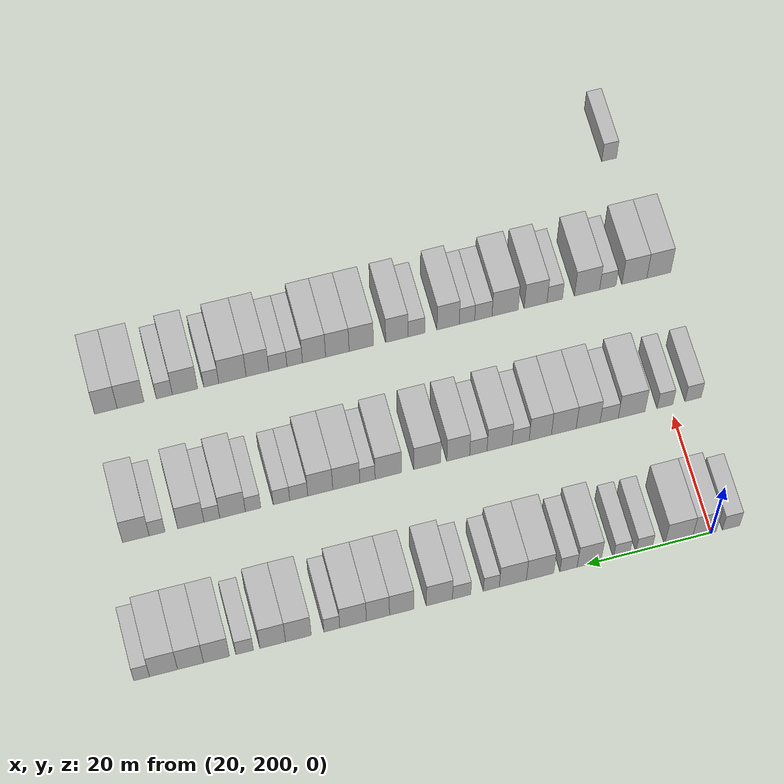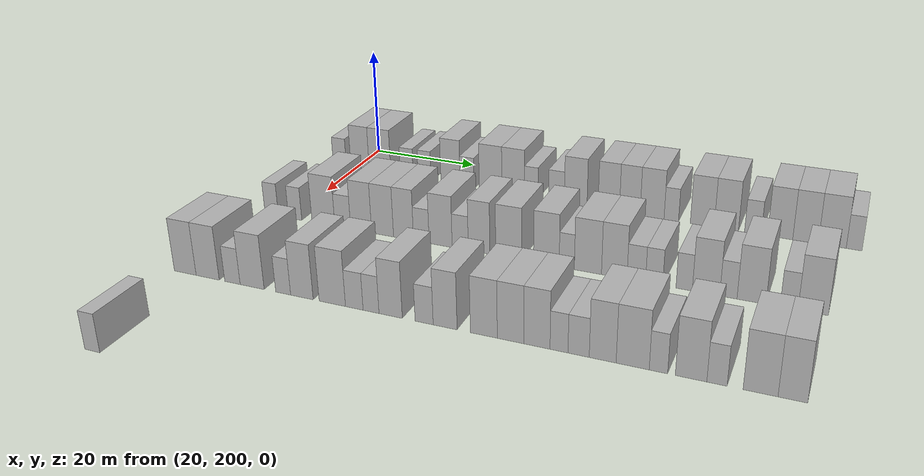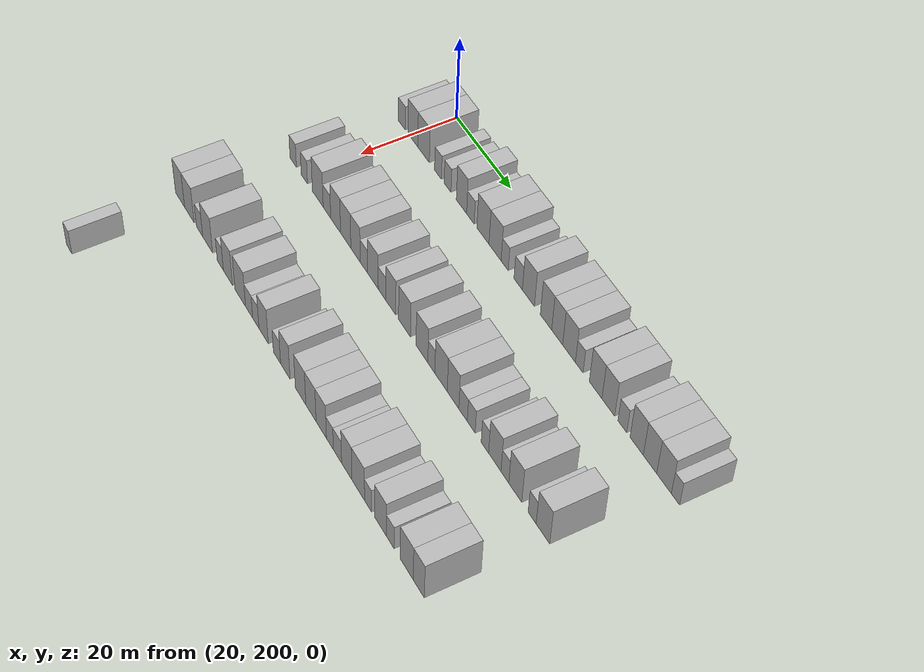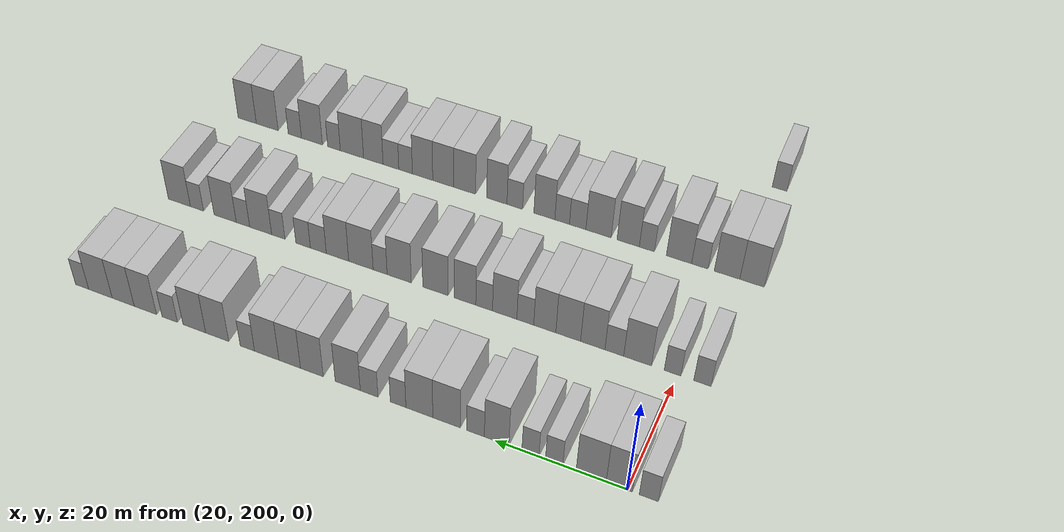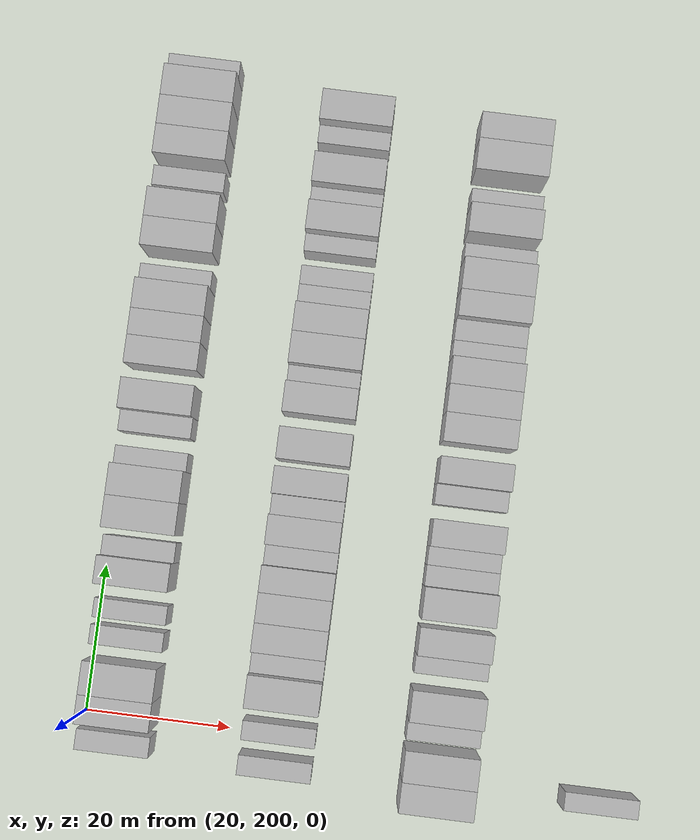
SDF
<sdf version="1.6">
 <world name="default">
  <model name="building_135">
   <static>1</static>
   <pose>25.0000 196.8871 0 0.000000 0.000000 0.000000</pose>
   <link name="link">
    <pose>0 0 3.00 0 0 0</pose>
    <collision name="collision"><geometry><box><size>10.0000 2.7892 6.0000</size></box></geometry></collision>
    <visual name="visual">
     <cast_shadows>0</cast_shadows>
     <geometry><box><size>10.0000 2.7892 6.0000</size></box></geometry>
     <material>
      <script>
       <uri>model://HANNAS_wall/materials/scripts</uri>
       <uri>model://HANNAS_wall/materials/textures</uri>
       <name>vrc/HANNAS_wall</name>
      </script>
     </material>
    </visual>
   </link>
  </model>
  <model name="building_136">
   <static>1</static>
   <pose>25.0000 201.2168 0 0.000000 0.000000 0.000000</pose>
   <link name="link">
    <pose>0 0 4.50 0 0 0</pose>
    <collision name="collision"><geometry><box><size>10.0000 3.8704 9.0000</size></box></geometry></collision>
    <visual name="visual">
     <cast_shadows>0</cast_shadows>
     <geometry><box><size>10.0000 3.8704 9.0000</size></box></geometry>
     <material>
      <script>
       <uri>model://HANNAS_wall/materials/scripts</uri>
       <uri>model://HANNAS_wall/materials/textures</uri>
       <name>vrc/HANNAS_wall</name>
      </script>
     </material>
    </visual>
   </link>
  </model>
  <model name="building_137">
   <static>1</static>
   <pose>25.0000 205.3932 0 0.000000 0.000000 0.000000</pose>
   <link name="link">
    <pose>0 0 4.50 0 0 0</pose>
    <collision name="collision"><geometry><box><size>10.0000 4.4824 9.0000</size></box></geometry></collision>
    <visual name="visual">
     <cast_shadows>0</cast_shadows>
     <geometry><box><size>10.0000 4.4824 9.0000</size></box></geometry>
     <material>
      <script>
       <uri>model://HANNAS_wall/materials/scripts</uri>
       <uri>model://HANNAS_wall/materials/textures</uri>
       <name>vrc/HANNAS_wall</name>
      </script>
     </material>
    </visual>
   </link>
  </model>
  <model name="building_138">
   <static>1</static>
   <pose>25.0000 210.9504 0 0.000000 0.000000 0.000000</pose>
   <link name="link">
    <pose>0 0 3.00 0 0 0</pose>
    <collision name="collision"><geometry><box><size>10.0000 2.6320 6.0000</size></box></geometry></collision>
    <visual name="visual">
     <cast_shadows>0</cast_shadows>
     <geometry><box><size>10.0000 2.6320 6.0000</size></box></geometry>
     <material>
      <script>
       <uri>model://HANNAS_wall/materials/scripts</uri>
       <uri>model://HANNAS_wall/materials/textures</uri>
       <name>vrc/HANNAS_wall</name>
      </script>
     </material>
    </visual>
   </link>
  </model>
  <model name="building_139">
   <static>1</static>
   <pose>25.0000 214.5678 0 0.000000 0.000000 0.000000</pose>
   <link name="link">
    <pose>0 0 3.00 0 0 0</pose>
    <collision name="collision"><geometry><box><size>10.0000 2.6027 6.0000</size></box></geometry></collision>
    <visual name="visual">
     <cast_shadows>0</cast_shadows>
     <geometry><box><size>10.0000 2.6027 6.0000</size></box></geometry>
     <material>
      <script>
       <uri>model://HANNAS_wall/materials/scripts</uri>
       <uri>model://HANNAS_wall/materials/textures</uri>
       <name>vrc/HANNAS_wall</name>
      </script>
     </material>
    </visual>
   </link>
  </model>
  <model name="building_140">
   <static>1</static>
   <pose>25.0000 219.7738 0 0.000000 0.000000 0.000000</pose>
   <link name="link">
    <pose>0 0 4.50 0 0 0</pose>
    <collision name="collision"><geometry><box><size>10.0000 3.8095 9.0000</size></box></geometry></collision>
    <visual name="visual">
     <cast_shadows>0</cast_shadows>
     <geometry><box><size>10.0000 3.8095 9.0000</size></box></geometry>
     <material>
      <script>
       <uri>model://HANNAS_wall/materials/scripts</uri>
       <uri>model://HANNAS_wall/materials/textures</uri>
       <name>vrc/HANNAS_wall</name>
      </script>
     </material>
    </visual>
   </link>
  </model>
  <model name="building_141">
   <static>1</static>
   <pose>25.0000 223.0593 0 0.000000 0.000000 0.000000</pose>
   <link name="link">
    <pose>0 0 3.00 0 0 0</pose>
    <collision name="collision"><geometry><box><size>10.0000 2.7613 6.0000</size></box></geometry></collision>
    <visual name="visual">
     <cast_shadows>0</cast_shadows>
     <geometry><box><size>10.0000 2.7613 6.0000</size></box></geometry>
     <material>
      <script>
       <uri>model://HANNAS_wall/materials/scripts</uri>
       <uri>model://HANNAS_wall/materials/textures</uri>
       <name>vrc/HANNAS_wall</name>
      </script>
     </material>
    </visual>
   </link>
  </model>
  <model name="building_142">
   <static>1</static>
   <pose>25.0000 227.6214 0 0.000000 0.000000 0.000000</pose>
   <link name="link">
    <pose>0 0 4.50 0 0 0</pose>
    <collision name="collision"><geometry><box><size>10.0000 4.3630 9.0000</size></box></geometry></collision>
    <visual name="visual">
     <cast_shadows>0</cast_shadows>
     <geometry><box><size>10.0000 4.3630 9.0000</size></box></geometry>
     <material>
      <script>
       <uri>model://HANNAS_wall/materials/scripts</uri>
       <uri>model://HANNAS_wall/materials/textures</uri>
       <name>vrc/HANNAS_wall</name>
      </script>
     </material>
    </visual>
   </link>
  </model>
  <model name="building_143">
   <static>1</static>
   <pose>25.0000 231.9650 0 0.000000 0.000000 0.000000</pose>
   <link name="link">
    <pose>0 0 4.50 0 0 0</pose>
    <collision name="collision"><geometry><box><size>10.0000 4.3241 9.0000</size></box></geometry></collision>
    <visual name="visual">
     <cast_shadows>0</cast_shadows>
     <geometry><box><size>10.0000 4.3241 9.0000</size></box></geometry>
     <material>
      <script>
       <uri>model://HANNAS_wall/materials/scripts</uri>
       <uri>model://HANNAS_wall/materials/textures</uri>
       <name>vrc/HANNAS_wall</name>
      </script>
     </material>
    </visual>
   </link>
  </model>
  <model name="building_144">
   <static>1</static>
   <pose>25.0000 235.3906 0 0.000000 0.000000 0.000000</pose>
   <link name="link">
    <pose>0 0 3.00 0 0 0</pose>
    <collision name="collision"><geometry><box><size>10.0000 2.5272 6.0000</size></box></geometry></collision>
    <visual name="visual">
     <cast_shadows>0</cast_shadows>
     <geometry><box><size>10.0000 2.5272 6.0000</size></box></geometry>
     <material>
      <script>
       <uri>model://HANNAS_wall/materials/scripts</uri>
       <uri>model://HANNAS_wall/materials/textures</uri>
       <name>vrc/HANNAS_wall</name>
      </script>
     </material>
    </visual>
   </link>
  </model>
  <model name="building_145">
   <static>1</static>
   <pose>25.0000 240.1080 0 0.000000 0.000000 0.000000</pose>
   <link name="link">
    <pose>0 0 3.00 0 0 0</pose>
    <collision name="collision"><geometry><box><size>10.0000 2.9075 6.0000</size></box></geometry></collision>
    <visual name="visual">
     <cast_shadows>0</cast_shadows>
     <geometry><box><size>10.0000 2.9075 6.0000</size></box></geometry>
     <material>
      <script>
       <uri>model://HANNAS_wall/materials/scripts</uri>
       <uri>model://HANNAS_wall/materials/textures</uri>
       <name>vrc/HANNAS_wall</name>
      </script>
     </material>
    </visual>
   </link>
  </model>
  <model name="building_146">
   <static>1</static>
   <pose>25.0000 243.6363 0 0.000000 0.000000 0.000000</pose>
   <link name="link">
    <pose>0 0 4.50 0 0 0</pose>
    <collision name="collision"><geometry><box><size>10.0000 4.1491 9.0000</size></box></geometry></collision>
    <visual name="visual">
     <cast_shadows>0</cast_shadows>
     <geometry><box><size>10.0000 4.1491 9.0000</size></box></geometry>
     <material>
      <script>
       <uri>model://HANNAS_wall/materials/scripts</uri>
       <uri>model://HANNAS_wall/materials/textures</uri>
       <name>vrc/HANNAS_wall</name>
      </script>
     </material>
    </visual>
   </link>
  </model>
  <model name="building_147">
   <static>1</static>
   <pose>25.0000 249.6225 0 0.000000 0.000000 0.000000</pose>
   <link name="link">
    <pose>0 0 4.50 0 0 0</pose>
    <collision name="collision"><geometry><box><size>10.0000 3.8234 9.0000</size></box></geometry></collision>
    <visual name="visual">
     <cast_shadows>0</cast_shadows>
     <geometry><box><size>10.0000 3.8234 9.0000</size></box></geometry>
     <material>
      <script>
       <uri>model://HANNAS_wall/materials/scripts</uri>
       <uri>model://HANNAS_wall/materials/textures</uri>
       <name>vrc/HANNAS_wall</name>
      </script>
     </material>
    </visual>
   </link>
  </model>
  <model name="building_148">
   <static>1</static>
   <pose>25.0000 253.3574 0 0.000000 0.000000 0.000000</pose>
   <link name="link">
    <pose>0 0 4.50 0 0 0</pose>
    <collision name="collision"><geometry><box><size>10.0000 3.6464 9.0000</size></box></geometry></collision>
    <visual name="visual">
     <cast_shadows>0</cast_shadows>
     <geometry><box><size>10.0000 3.6464 9.0000</size></box></geometry>
     <material>
      <script>
       <uri>model://HANNAS_wall/materials/scripts</uri>
       <uri>model://HANNAS_wall/materials/textures</uri>
       <name>vrc/HANNAS_wall</name>
      </script>
     </material>
    </visual>
   </link>
  </model>
  <model name="building_149">
   <static>1</static>
   <pose>25.0000 257.2704 0 0.000000 0.000000 0.000000</pose>
   <link name="link">
    <pose>0 0 4.50 0 0 0</pose>
    <collision name="collision"><geometry><box><size>10.0000 4.1795 9.0000</size></box></geometry></collision>
    <visual name="visual">
     <cast_shadows>0</cast_shadows>
     <geometry><box><size>10.0000 4.1795 9.0000</size></box></geometry>
     <material>
      <script>
       <uri>model://HANNAS_wall/materials/scripts</uri>
       <uri>model://HANNAS_wall/materials/textures</uri>
       <name>vrc/HANNAS_wall</name>
      </script>
     </material>
    </visual>
   </link>
  </model>
  <model name="building_150">
   <static>1</static>
   <pose>25.0000 260.6044 0 0.000000 0.000000 0.000000</pose>
   <link name="link">
    <pose>0 0 3.00 0 0 0</pose>
    <collision name="collision"><geometry><box><size>10.0000 2.4885 6.0000</size></box></geometry></collision>
    <visual name="visual">
     <cast_shadows>0</cast_shadows>
     <geometry><box><size>10.0000 2.4885 6.0000</size></box></geometry>
     <material>
      <script>
       <uri>model://HANNAS_wall/materials/scripts</uri>
       <uri>model://HANNAS_wall/materials/textures</uri>
       <name>vrc/HANNAS_wall</name>
      </script>
     </material>
    </visual>
   </link>
  </model>
  <model name="building_151">
   <static>1</static>
   <pose>25.0000 265.8659 0 0.000000 0.000000 0.000000</pose>
   <link name="link">
    <pose>0 0 4.50 0 0 0</pose>
    <collision name="collision"><geometry><box><size>10.0000 4.0345 9.0000</size></box></geometry></collision>
    <visual name="visual">
     <cast_shadows>0</cast_shadows>
     <geometry><box><size>10.0000 4.0345 9.0000</size></box></geometry>
     <material>
      <script>
       <uri>model://HANNAS_wall/materials/scripts</uri>
       <uri>model://HANNAS_wall/materials/textures</uri>
       <name>vrc/HANNAS_wall</name>
      </script>
     </material>
    </visual>
   </link>
  </model>
  <model name="building_152">
   <static>1</static>
   <pose>25.0000 269.8973 0 0.000000 0.000000 0.000000</pose>
   <link name="link">
    <pose>0 0 4.50 0 0 0</pose>
    <collision name="collision"><geometry><box><size>10.0000 4.0283 9.0000</size></box></geometry></collision>
    <visual name="visual">
     <cast_shadows>0</cast_shadows>
     <geometry><box><size>10.0000 4.0283 9.0000</size></box></geometry>
     <material>
      <script>
       <uri>model://HANNAS_wall/materials/scripts</uri>
       <uri>model://HANNAS_wall/materials/textures</uri>
       <name>vrc/HANNAS_wall</name>
      </script>
     </material>
    </visual>
   </link>
  </model>
  <model name="building_153">
   <static>1</static>
   <pose>25.0000 274.2824 0 0.000000 0.000000 0.000000</pose>
   <link name="link">
    <pose>0 0 3.00 0 0 0</pose>
    <collision name="collision"><geometry><box><size>10.0000 2.7420 6.0000</size></box></geometry></collision>
    <visual name="visual">
     <cast_shadows>0</cast_shadows>
     <geometry><box><size>10.0000 2.7420 6.0000</size></box></geometry>
     <material>
      <script>
       <uri>model://HANNAS_wall/materials/scripts</uri>
       <uri>model://HANNAS_wall/materials/textures</uri>
       <name>vrc/HANNAS_wall</name>
      </script>
     </material>
    </visual>
   </link>
  </model>
  <model name="building_154">
   <static>1</static>
   <pose>25.0000 278.6746 0 0.000000 0.000000 0.000000</pose>
   <link name="link">
    <pose>0 0 4.50 0 0 0</pose>
    <collision name="collision"><geometry><box><size>10.0000 4.0424 9.0000</size></box></geometry></collision>
    <visual name="visual">
     <cast_shadows>0</cast_shadows>
     <geometry><box><size>10.0000 4.0424 9.0000</size></box></geometry>
     <material>
      <script>
       <uri>model://HANNAS_wall/materials/scripts</uri>
       <uri>model://HANNAS_wall/materials/textures</uri>
       <name>vrc/HANNAS_wall</name>
      </script>
     </material>
    </visual>
   </link>
  </model>
  <model name="building_155">
   <static>1</static>
   <pose>25.0000 282.7156 0 0.000000 0.000000 0.000000</pose>
   <link name="link">
    <pose>0 0 4.50 0 0 0</pose>
    <collision name="collision"><geometry><box><size>10.0000 4.0396 9.0000</size></box></geometry></collision>
    <visual name="visual">
     <cast_shadows>0</cast_shadows>
     <geometry><box><size>10.0000 4.0396 9.0000</size></box></geometry>
     <material>
      <script>
       <uri>model://HANNAS_wall/materials/scripts</uri>
       <uri>model://HANNAS_wall/materials/textures</uri>
       <name>vrc/HANNAS_wall</name>
      </script>
     </material>
    </visual>
   </link>
  </model>
  <model name="building_156">
   <static>1</static>
   <pose>25.0000 286.9095 0 0.000000 0.000000 0.000000</pose>
   <link name="link">
    <pose>0 0 4.50 0 0 0</pose>
    <collision name="collision"><geometry><box><size>10.0000 4.3482 9.0000</size></box></geometry></collision>
    <visual name="visual">
     <cast_shadows>0</cast_shadows>
     <geometry><box><size>10.0000 4.3482 9.0000</size></box></geometry>
     <material>
      <script>
       <uri>model://HANNAS_wall/materials/scripts</uri>
       <uri>model://HANNAS_wall/materials/textures</uri>
       <name>vrc/HANNAS_wall</name>
      </script>
     </material>
    </visual>
   </link>
  </model>
  <model name="building_157">
   <static>1</static>
   <pose>25.0000 290.3021 0 0.000000 0.000000 0.000000</pose>
   <link name="link">
    <pose>0 0 3.00 0 0 0</pose>
    <collision name="collision"><geometry><box><size>10.0000 2.4369 6.0000</size></box></geometry></collision>
    <visual name="visual">
     <cast_shadows>0</cast_shadows>
     <geometry><box><size>10.0000 2.4369 6.0000</size></box></geometry>
     <material>
      <script>
       <uri>model://HANNAS_wall/materials/scripts</uri>
       <uri>model://HANNAS_wall/materials/textures</uri>
       <name>vrc/HANNAS_wall</name>
      </script>
     </material>
    </visual>
   </link>
  </model>
  <model name="building_329">
   <static>1</static>
   <pose>47.0000 196.1818 0 0.000000 0.000000 0.000000</pose>
   <link name="link">
    <pose>0 0 3.00 0 0 0</pose>
    <collision name="collision"><geometry><box><size>10.0000 2.6689 6.0000</size></box></geometry></collision>
    <visual name="visual">
     <cast_shadows>0</cast_shadows>
     <geometry><box><size>10.0000 2.6689 6.0000</size></box></geometry>
     <material>
      <script>
       <uri>model://HANNAS_wall/materials/scripts</uri>
       <uri>model://HANNAS_wall/materials/textures</uri>
       <name>vrc/HANNAS_wall</name>
      </script>
     </material>
    </visual>
   </link>
  </model>
  <model name="building_330">
   <static>1</static>
   <pose>47.0000 200.8099 0 0.000000 0.000000 0.000000</pose>
   <link name="link">
    <pose>0 0 3.00 0 0 0</pose>
    <collision name="collision"><geometry><box><size>10.0000 2.5873 6.0000</size></box></geometry></collision>
    <visual name="visual">
     <cast_shadows>0</cast_shadows>
     <geometry><box><size>10.0000 2.5873 6.0000</size></box></geometry>
     <material>
      <script>
       <uri>model://HANNAS_wall/materials/scripts</uri>
       <uri>model://HANNAS_wall/materials/textures</uri>
       <name>vrc/HANNAS_wall</name>
      </script>
     </material>
    </visual>
   </link>
  </model>
  <model name="building_331">
   <static>1</static>
   <pose>47.0000 206.2992 0 0.000000 0.000000 0.000000</pose>
   <link name="link">
    <pose>0 0 4.50 0 0 0</pose>
    <collision name="collision"><geometry><box><size>10.0000 4.3912 9.0000</size></box></geometry></collision>
    <visual name="visual">
     <cast_shadows>0</cast_shadows>
     <geometry><box><size>10.0000 4.3912 9.0000</size></box></geometry>
     <material>
      <script>
       <uri>model://HANNAS_wall/materials/scripts</uri>
       <uri>model://HANNAS_wall/materials/textures</uri>
       <name>vrc/HANNAS_wall</name>
      </script>
     </material>
    </visual>
   </link>
  </model>
  <model name="building_332">
   <static>1</static>
   <pose>47.0000 209.9893 0 0.000000 0.000000 0.000000</pose>
   <link name="link">
    <pose>0 0 3.00 0 0 0</pose>
    <collision name="collision"><geometry><box><size>10.0000 2.9890 6.0000</size></box></geometry></collision>
    <visual name="visual">
     <cast_shadows>0</cast_shadows>
     <geometry><box><size>10.0000 2.9890 6.0000</size></box></geometry>
     <material>
      <script>
       <uri>model://HANNAS_wall/materials/scripts</uri>
       <uri>model://HANNAS_wall/materials/textures</uri>
       <name>vrc/HANNAS_wall</name>
      </script>
     </material>
    </visual>
   </link>
  </model>
  <model name="building_333">
   <static>1</static>
   <pose>47.0000 213.4404 0 0.000000 0.000000 0.000000</pose>
   <link name="link">
    <pose>0 0 4.50 0 0 0</pose>
    <collision name="collision"><geometry><box><size>10.0000 3.9133 9.0000</size></box></geometry></collision>
    <visual name="visual">
     <cast_shadows>0</cast_shadows>
     <geometry><box><size>10.0000 3.9133 9.0000</size></box></geometry>
     <material>
      <script>
       <uri>model://HANNAS_wall/materials/scripts</uri>
       <uri>model://HANNAS_wall/materials/textures</uri>
       <name>vrc/HANNAS_wall</name>
      </script>
     </material>
    </visual>
   </link>
  </model>
  <model name="building_334">
   <static>1</static>
   <pose>47.0000 217.4116 0 0.000000 0.000000 0.000000</pose>
   <link name="link">
    <pose>0 0 4.50 0 0 0</pose>
    <collision name="collision"><geometry><box><size>10.0000 4.0290 9.0000</size></box></geometry></collision>
    <visual name="visual">
     <cast_shadows>0</cast_shadows>
     <geometry><box><size>10.0000 4.0290 9.0000</size></box></geometry>
     <material>
      <script>
       <uri>model://HANNAS_wall/materials/scripts</uri>
       <uri>model://HANNAS_wall/materials/textures</uri>
       <name>vrc/HANNAS_wall</name>
      </script>
     </material>
    </visual>
   </link>
  </model>
  <model name="building_335">
   <static>1</static>
   <pose>47.0000 221.2414 0 0.000000 0.000000 0.000000</pose>
   <link name="link">
    <pose>0 0 4.50 0 0 0</pose>
    <collision name="collision"><geometry><box><size>10.0000 3.6306 9.0000</size></box></geometry></collision>
    <visual name="visual">
     <cast_shadows>0</cast_shadows>
     <geometry><box><size>10.0000 3.6306 9.0000</size></box></geometry>
     <material>
      <script>
       <uri>model://HANNAS_wall/materials/scripts</uri>
       <uri>model://HANNAS_wall/materials/textures</uri>
       <name>vrc/HANNAS_wall</name>
      </script>
     </material>
    </visual>
   </link>
  </model>
  <model name="building_336">
   <static>1</static>
   <pose>47.0000 224.4515 0 0.000000 0.000000 0.000000</pose>
   <link name="link">
    <pose>0 0 3.00 0 0 0</pose>
    <collision name="collision"><geometry><box><size>10.0000 2.7896 6.0000</size></box></geometry></collision>
    <visual name="visual">
     <cast_shadows>0</cast_shadows>
     <geometry><box><size>10.0000 2.7896 6.0000</size></box></geometry>
     <material>
      <script>
       <uri>model://HANNAS_wall/materials/scripts</uri>
       <uri>model://HANNAS_wall/materials/textures</uri>
       <name>vrc/HANNAS_wall</name>
      </script>
     </material>
    </visual>
   </link>
  </model>
  <model name="building_337">
   <static>1</static>
   <pose>47.0000 227.8812 0 0.000000 0.000000 0.000000</pose>
   <link name="link">
    <pose>0 0 4.50 0 0 0</pose>
    <collision name="collision"><geometry><box><size>10.0000 4.0697 9.0000</size></box></geometry></collision>
    <visual name="visual">
     <cast_shadows>0</cast_shadows>
     <geometry><box><size>10.0000 4.0697 9.0000</size></box></geometry>
     <material>
      <script>
       <uri>model://HANNAS_wall/materials/scripts</uri>
       <uri>model://HANNAS_wall/materials/textures</uri>
       <name>vrc/HANNAS_wall</name>
      </script>
     </material>
    </visual>
   </link>
  </model>
  <model name="building_338">
   <static>1</static>
   <pose>47.0000 231.3201 0 0.000000 0.000000 0.000000</pose>
   <link name="link">
    <pose>0 0 3.00 0 0 0</pose>
    <collision name="collision"><geometry><box><size>10.0000 2.8081 6.0000</size></box></geometry></collision>
    <visual name="visual">
     <cast_shadows>0</cast_shadows>
     <geometry><box><size>10.0000 2.8081 6.0000</size></box></geometry>
     <material>
      <script>
       <uri>model://HANNAS_wall/materials/scripts</uri>
       <uri>model://HANNAS_wall/materials/textures</uri>
       <name>vrc/HANNAS_wall</name>
      </script>
     </material>
    </visual>
   </link>
  </model>
  <model name="building_339">
   <static>1</static>
   <pose>47.0000 234.5798 0 0.000000 0.000000 0.000000</pose>
   <link name="link">
    <pose>0 0 4.50 0 0 0</pose>
    <collision name="collision"><geometry><box><size>10.0000 3.7114 9.0000</size></box></geometry></collision>
    <visual name="visual">
     <cast_shadows>0</cast_shadows>
     <geometry><box><size>10.0000 3.7114 9.0000</size></box></geometry>
     <material>
      <script>
       <uri>model://HANNAS_wall/materials/scripts</uri>
       <uri>model://HANNAS_wall/materials/textures</uri>
       <name>vrc/HANNAS_wall</name>
      </script>
     </material>
    </visual>
   </link>
  </model>
  <model name="building_340">
   <static>1</static>
   <pose>47.0000 239.6092 0 0.000000 0.000000 0.000000</pose>
   <link name="link">
    <pose>0 0 4.50 0 0 0</pose>
    <collision name="collision"><geometry><box><size>10.0000 4.3473 9.0000</size></box></geometry></collision>
    <visual name="visual">
     <cast_shadows>0</cast_shadows>
     <geometry><box><size>10.0000 4.3473 9.0000</size></box></geometry>
     <material>
      <script>
       <uri>model://HANNAS_wall/materials/scripts</uri>
       <uri>model://HANNAS_wall/materials/textures</uri>
       <name>vrc/HANNAS_wall</name>
      </script>
     </material>
    </visual>
   </link>
  </model>
  <model name="building_341">
   <static>1</static>
   <pose>47.0000 245.8925 0 0.000000 0.000000 0.000000</pose>
   <link name="link">
    <pose>0 0 4.50 0 0 0</pose>
    <collision name="collision"><geometry><box><size>10.0000 4.2194 9.0000</size></box></geometry></collision>
    <visual name="visual">
     <cast_shadows>0</cast_shadows>
     <geometry><box><size>10.0000 4.2194 9.0000</size></box></geometry>
     <material>
      <script>
       <uri>model://HANNAS_wall/materials/scripts</uri>
       <uri>model://HANNAS_wall/materials/textures</uri>
       <name>vrc/HANNAS_wall</name>
      </script>
     </material>
    </visual>
   </link>
  </model>
  <model name="building_342">
   <static>1</static>
   <pose>47.0000 249.2314 0 0.000000 0.000000 0.000000</pose>
   <link name="link">
    <pose>0 0 3.00 0 0 0</pose>
    <collision name="collision"><geometry><box><size>10.0000 2.4585 6.0000</size></box></geometry></collision>
    <visual name="visual">
     <cast_shadows>0</cast_shadows>
     <geometry><box><size>10.0000 2.4585 6.0000</size></box></geometry>
     <material>
      <script>
       <uri>model://HANNAS_wall/materials/scripts</uri>
       <uri>model://HANNAS_wall/materials/textures</uri>
       <name>vrc/HANNAS_wall</name>
      </script>
     </material>
    </visual>
   </link>
  </model>
  <model name="building_343">
   <static>1</static>
   <pose>47.0000 252.6317 0 0.000000 0.000000 0.000000</pose>
   <link name="link">
    <pose>0 0 4.50 0 0 0</pose>
    <collision name="collision"><geometry><box><size>10.0000 4.3420 9.0000</size></box></geometry></collision>
    <visual name="visual">
     <cast_shadows>0</cast_shadows>
     <geometry><box><size>10.0000 4.3420 9.0000</size></box></geometry>
     <material>
      <script>
       <uri>model://HANNAS_wall/materials/scripts</uri>
       <uri>model://HANNAS_wall/materials/textures</uri>
       <name>vrc/HANNAS_wall</name>
      </script>
     </material>
    </visual>
   </link>
  </model>
  <model name="building_344">
   <static>1</static>
   <pose>47.0000 256.8088 0 0.000000 0.000000 0.000000</pose>
   <link name="link">
    <pose>0 0 4.50 0 0 0</pose>
    <collision name="collision"><geometry><box><size>10.0000 4.0122 9.0000</size></box></geometry></collision>
    <visual name="visual">
     <cast_shadows>0</cast_shadows>
     <geometry><box><size>10.0000 4.0122 9.0000</size></box></geometry>
     <material>
      <script>
       <uri>model://HANNAS_wall/materials/scripts</uri>
       <uri>model://HANNAS_wall/materials/textures</uri>
       <name>vrc/HANNAS_wall</name>
      </script>
     </material>
    </visual>
   </link>
  </model>
  <model name="building_345">
   <static>1</static>
   <pose>47.0000 260.2570 0 0.000000 0.000000 0.000000</pose>
   <link name="link">
    <pose>0 0 3.00 0 0 0</pose>
    <collision name="collision"><geometry><box><size>10.0000 2.8843 6.0000</size></box></geometry></collision>
    <visual name="visual">
     <cast_shadows>0</cast_shadows>
     <geometry><box><size>10.0000 2.8843 6.0000</size></box></geometry>
     <material>
      <script>
       <uri>model://HANNAS_wall/materials/scripts</uri>
       <uri>model://HANNAS_wall/materials/textures</uri>
       <name>vrc/HANNAS_wall</name>
      </script>
     </material>
    </visual>
   </link>
  </model>
  <model name="building_346">
   <static>1</static>
   <pose>47.0000 263.0174 0 0.000000 0.000000 0.000000</pose>
   <link name="link">
    <pose>0 0 3.00 0 0 0</pose>
    <collision name="collision"><geometry><box><size>10.0000 2.6363 6.0000</size></box></geometry></collision>
    <visual name="visual">
     <cast_shadows>0</cast_shadows>
     <geometry><box><size>10.0000 2.6363 6.0000</size></box></geometry>
     <material>
      <script>
       <uri>model://HANNAS_wall/materials/scripts</uri>
       <uri>model://HANNAS_wall/materials/textures</uri>
       <name>vrc/HANNAS_wall</name>
      </script>
     </material>
    </visual>
   </link>
  </model>
  <model name="building_347">
   <static>1</static>
   <pose>47.0000 267.5622 0 0.000000 0.000000 0.000000</pose>
   <link name="link">
    <pose>0 0 3.00 0 0 0</pose>
    <collision name="collision"><geometry><box><size>10.0000 2.4535 6.0000</size></box></geometry></collision>
    <visual name="visual">
     <cast_shadows>0</cast_shadows>
     <geometry><box><size>10.0000 2.4535 6.0000</size></box></geometry>
     <material>
      <script>
       <uri>model://HANNAS_wall/materials/scripts</uri>
       <uri>model://HANNAS_wall/materials/textures</uri>
       <name>vrc/HANNAS_wall</name>
      </script>
     </material>
    </visual>
   </link>
  </model>
  <model name="building_348">
   <static>1</static>
   <pose>47.0000 270.8251 0 0.000000 0.000000 0.000000</pose>
   <link name="link">
    <pose>0 0 4.50 0 0 0</pose>
    <collision name="collision"><geometry><box><size>10.0000 4.0722 9.0000</size></box></geometry></collision>
    <visual name="visual">
     <cast_shadows>0</cast_shadows>
     <geometry><box><size>10.0000 4.0722 9.0000</size></box></geometry>
     <material>
      <script>
       <uri>model://HANNAS_wall/materials/scripts</uri>
       <uri>model://HANNAS_wall/materials/textures</uri>
       <name>vrc/HANNAS_wall</name>
      </script>
     </material>
    </visual>
   </link>
  </model>
  <model name="building_349">
   <static>1</static>
   <pose>47.0000 274.1231 0 0.000000 0.000000 0.000000</pose>
   <link name="link">
    <pose>0 0 3.00 0 0 0</pose>
    <collision name="collision"><geometry><box><size>10.0000 2.5238 6.0000</size></box></geometry></collision>
    <visual name="visual">
     <cast_shadows>0</cast_shadows>
     <geometry><box><size>10.0000 2.5238 6.0000</size></box></geometry>
     <material>
      <script>
       <uri>model://HANNAS_wall/materials/scripts</uri>
       <uri>model://HANNAS_wall/materials/textures</uri>
       <name>vrc/HANNAS_wall</name>
      </script>
     </material>
    </visual>
   </link>
  </model>
  <model name="building_350">
   <static>1</static>
   <pose>47.0000 277.4728 0 0.000000 0.000000 0.000000</pose>
   <link name="link">
    <pose>0 0 4.50 0 0 0</pose>
    <collision name="collision"><geometry><box><size>10.0000 4.1755 9.0000</size></box></geometry></collision>
    <visual name="visual">
     <cast_shadows>0</cast_shadows>
     <geometry><box><size>10.0000 4.1755 9.0000</size></box></geometry>
     <material>
      <script>
       <uri>model://HANNAS_wall/materials/scripts</uri>
       <uri>model://HANNAS_wall/materials/textures</uri>
       <name>vrc/HANNAS_wall</name>
      </script>
     </material>
    </visual>
   </link>
  </model>
  <model name="building_351">
   <static>1</static>
   <pose>47.0000 282.8195 0 0.000000 0.000000 0.000000</pose>
   <link name="link">
    <pose>0 0 3.00 0 0 0</pose>
    <collision name="collision"><geometry><box><size>10.0000 2.5179 6.0000</size></box></geometry></collision>
    <visual name="visual">
     <cast_shadows>0</cast_shadows>
     <geometry><box><size>10.0000 2.5179 6.0000</size></box></geometry>
     <material>
      <script>
       <uri>model://HANNAS_wall/materials/scripts</uri>
       <uri>model://HANNAS_wall/materials/textures</uri>
       <name>vrc/HANNAS_wall</name>
      </script>
     </material>
    </visual>
   </link>
  </model>
  <model name="building_352">
   <static>1</static>
   <pose>47.0000 286.1905 0 0.000000 0.000000 0.000000</pose>
   <link name="link">
    <pose>0 0 4.50 0 0 0</pose>
    <collision name="collision"><geometry><box><size>10.0000 4.2240 9.0000</size></box></geometry></collision>
    <visual name="visual">
     <cast_shadows>0</cast_shadows>
     <geometry><box><size>10.0000 4.2240 9.0000</size></box></geometry>
     <material>
      <script>
       <uri>model://HANNAS_wall/materials/scripts</uri>
       <uri>model://HANNAS_wall/materials/textures</uri>
       <name>vrc/HANNAS_wall</name>
      </script>
     </material>
    </visual>
   </link>
  </model>
  <model name="building_519">
   <static>1</static>
   <pose>69.0000 195.0951 0 0.000000 0.000000 0.000000</pose>
   <link name="link">
    <pose>0 0 4.50 0 0 0</pose>
    <collision name="collision"><geometry><box><size>10.0000 4.0037 9.0000</size></box></geometry></collision>
    <visual name="visual">
     <cast_shadows>0</cast_shadows>
     <geometry><box><size>10.0000 4.0037 9.0000</size></box></geometry>
     <material>
      <script>
       <uri>model://HANNAS_wall/materials/scripts</uri>
       <uri>model://HANNAS_wall/materials/textures</uri>
       <name>vrc/HANNAS_wall</name>
      </script>
     </material>
    </visual>
   </link>
  </model>
  <model name="building_520">
   <static>1</static>
   <pose>69.0000 199.1858 0 0.000000 0.000000 0.000000</pose>
   <link name="link">
    <pose>0 0 4.50 0 0 0</pose>
    <collision name="collision"><geometry><box><size>10.0000 4.1778 9.0000</size></box></geometry></collision>
    <visual name="visual">
     <cast_shadows>0</cast_shadows>
     <geometry><box><size>10.0000 4.1778 9.0000</size></box></geometry>
     <material>
      <script>
       <uri>model://HANNAS_wall/materials/scripts</uri>
       <uri>model://HANNAS_wall/materials/textures</uri>
       <name>vrc/HANNAS_wall</name>
      </script>
     </material>
    </visual>
   </link>
  </model>
  <model name="building_521">
   <static>1</static>
   <pose>69.0000 203.6396 0 0.000000 0.000000 0.000000</pose>
   <link name="link">
    <pose>0 0 3.00 0 0 0</pose>
    <collision name="collision"><geometry><box><size>10.0000 2.7298 6.0000</size></box></geometry></collision>
    <visual name="visual">
     <cast_shadows>0</cast_shadows>
     <geometry><box><size>10.0000 2.7298 6.0000</size></box></geometry>
     <material>
      <script>
       <uri>model://HANNAS_wall/materials/scripts</uri>
       <uri>model://HANNAS_wall/materials/textures</uri>
       <name>vrc/HANNAS_wall</name>
      </script>
     </material>
    </visual>
   </link>
  </model>
  <model name="building_522">
   <static>1</static>
   <pose>69.0000 207.1074 0 0.000000 0.000000 0.000000</pose>
   <link name="link">
    <pose>0 0 4.50 0 0 0</pose>
    <collision name="collision"><geometry><box><size>10.0000 4.2057 9.0000</size></box></geometry></collision>
    <visual name="visual">
     <cast_shadows>0</cast_shadows>
     <geometry><box><size>10.0000 4.2057 9.0000</size></box></geometry>
     <material>
      <script>
       <uri>model://HANNAS_wall/materials/scripts</uri>
       <uri>model://HANNAS_wall/materials/textures</uri>
       <name>vrc/HANNAS_wall</name>
      </script>
     </material>
    </visual>
   </link>
  </model>
  <model name="building_523">
   <static>1</static>
   <pose>69.0000 212.4880 0 0.000000 0.000000 0.000000</pose>
   <link name="link">
    <pose>0 0 3.00 0 0 0</pose>
    <collision name="collision"><geometry><box><size>10.0000 2.5556 6.0000</size></box></geometry></collision>
    <visual name="visual">
     <cast_shadows>0</cast_shadows>
     <geometry><box><size>10.0000 2.5556 6.0000</size></box></geometry>
     <material>
      <script>
       <uri>model://HANNAS_wall/materials/scripts</uri>
       <uri>model://HANNAS_wall/materials/textures</uri>
       <name>vrc/HANNAS_wall</name>
      </script>
     </material>
    </visual>
   </link>
  </model>
  <model name="building_524">
   <static>1</static>
   <pose>69.0000 215.6673 0 0.000000 0.000000 0.000000</pose>
   <link name="link">
    <pose>0 0 4.50 0 0 0</pose>
    <collision name="collision"><geometry><box><size>10.0000 3.8029 9.0000</size></box></geometry></collision>
    <visual name="visual">
     <cast_shadows>0</cast_shadows>
     <geometry><box><size>10.0000 3.8029 9.0000</size></box></geometry>
     <material>
      <script>
       <uri>model://HANNAS_wall/materials/scripts</uri>
       <uri>model://HANNAS_wall/materials/textures</uri>
       <name>vrc/HANNAS_wall</name>
      </script>
     </material>
    </visual>
   </link>
  </model>
  <model name="building_525">
   <static>1</static>
   <pose>69.0000 220.7444 0 0.000000 0.000000 0.000000</pose>
   <link name="link">
    <pose>0 0 4.50 0 0 0</pose>
    <collision name="collision"><geometry><box><size>10.0000 4.3514 9.0000</size></box></geometry></collision>
    <visual name="visual">
     <cast_shadows>0</cast_shadows>
     <geometry><box><size>10.0000 4.3514 9.0000</size></box></geometry>
     <material>
      <script>
       <uri>model://HANNAS_wall/materials/scripts</uri>
       <uri>model://HANNAS_wall/materials/textures</uri>
       <name>vrc/HANNAS_wall</name>
      </script>
     </material>
    </visual>
   </link>
  </model>
  <model name="building_526">
   <static>1</static>
   <pose>69.0000 224.3507 0 0.000000 0.000000 0.000000</pose>
   <link name="link">
    <pose>0 0 3.00 0 0 0</pose>
    <collision name="collision"><geometry><box><size>10.0000 2.8611 6.0000</size></box></geometry></collision>
    <visual name="visual">
     <cast_shadows>0</cast_shadows>
     <geometry><box><size>10.0000 2.8611 6.0000</size></box></geometry>
     <material>
      <script>
       <uri>model://HANNAS_wall/materials/scripts</uri>
       <uri>model://HANNAS_wall/materials/textures</uri>
       <name>vrc/HANNAS_wall</name>
      </script>
     </material>
    </visual>
   </link>
  </model>
  <model name="building_527">
   <static>1</static>
   <pose>69.0000 227.0581 0 0.000000 0.000000 0.000000</pose>
   <link name="link">
    <pose>0 0 3.00 0 0 0</pose>
    <collision name="collision"><geometry><box><size>10.0000 2.5537 6.0000</size></box></geometry></collision>
    <visual name="visual">
     <cast_shadows>0</cast_shadows>
     <geometry><box><size>10.0000 2.5537 6.0000</size></box></geometry>
     <material>
      <script>
       <uri>model://HANNAS_wall/materials/scripts</uri>
       <uri>model://HANNAS_wall/materials/textures</uri>
       <name>vrc/HANNAS_wall</name>
      </script>
     </material>
    </visual>
   </link>
  </model>
  <model name="building_528">
   <static>1</static>
   <pose>69.0000 230.1826 0 0.000000 0.000000 0.000000</pose>
   <link name="link">
    <pose>0 0 4.50 0 0 0</pose>
    <collision name="collision"><geometry><box><size>10.0000 3.6953 9.0000</size></box></geometry></collision>
    <visual name="visual">
     <cast_shadows>0</cast_shadows>
     <geometry><box><size>10.0000 3.6953 9.0000</size></box></geometry>
     <material>
      <script>
       <uri>model://HANNAS_wall/materials/scripts</uri>
       <uri>model://HANNAS_wall/materials/textures</uri>
       <name>vrc/HANNAS_wall</name>
      </script>
     </material>
    </visual>
   </link>
  </model>
  <model name="building_529">
   <static>1</static>
   <pose>69.0000 235.4285 0 0.000000 0.000000 0.000000</pose>
   <link name="link">
    <pose>0 0 3.00 0 0 0</pose>
    <collision name="collision"><geometry><box><size>10.0000 2.7965 6.0000</size></box></geometry></collision>
    <visual name="visual">
     <cast_shadows>0</cast_shadows>
     <geometry><box><size>10.0000 2.7965 6.0000</size></box></geometry>
     <material>
      <script>
       <uri>model://HANNAS_wall/materials/scripts</uri>
       <uri>model://HANNAS_wall/materials/textures</uri>
       <name>vrc/HANNAS_wall</name>
      </script>
     </material>
    </visual>
   </link>
  </model>
  <model name="building_530">
   <static>1</static>
   <pose>69.0000 238.6536 0 0.000000 0.000000 0.000000</pose>
   <link name="link">
    <pose>0 0 4.50 0 0 0</pose>
    <collision name="collision"><geometry><box><size>10.0000 3.6537 9.0000</size></box></geometry></collision>
    <visual name="visual">
     <cast_shadows>0</cast_shadows>
     <geometry><box><size>10.0000 3.6537 9.0000</size></box></geometry>
     <material>
      <script>
       <uri>model://HANNAS_wall/materials/scripts</uri>
       <uri>model://HANNAS_wall/materials/textures</uri>
       <name>vrc/HANNAS_wall</name>
      </script>
     </material>
    </visual>
   </link>
  </model>
  <model name="building_531">
   <static>1</static>
   <pose>69.0000 244.4758 0 0.000000 0.000000 0.000000</pose>
   <link name="link">
    <pose>0 0 4.50 0 0 0</pose>
    <collision name="collision"><geometry><box><size>10.0000 3.9907 9.0000</size></box></geometry></collision>
    <visual name="visual">
     <cast_shadows>0</cast_shadows>
     <geometry><box><size>10.0000 3.9907 9.0000</size></box></geometry>
     <material>
      <script>
       <uri>model://HANNAS_wall/materials/scripts</uri>
       <uri>model://HANNAS_wall/materials/textures</uri>
       <name>vrc/HANNAS_wall</name>
      </script>
     </material>
    </visual>
   </link>
  </model>
  <model name="building_532">
   <static>1</static>
   <pose>69.0000 248.3947 0 0.000000 0.000000 0.000000</pose>
   <link name="link">
    <pose>0 0 4.50 0 0 0</pose>
    <collision name="collision"><geometry><box><size>10.0000 3.8472 9.0000</size></box></geometry></collision>
    <visual name="visual">
     <cast_shadows>0</cast_shadows>
     <geometry><box><size>10.0000 3.8472 9.0000</size></box></geometry>
     <material>
      <script>
       <uri>model://HANNAS_wall/materials/scripts</uri>
       <uri>model://HANNAS_wall/materials/textures</uri>
       <name>vrc/HANNAS_wall</name>
      </script>
     </material>
    </visual>
   </link>
  </model>
  <model name="building_533">
   <static>1</static>
   <pose>69.0000 252.2097 0 0.000000 0.000000 0.000000</pose>
   <link name="link">
    <pose>0 0 4.50 0 0 0</pose>
    <collision name="collision"><geometry><box><size>10.0000 3.7828 9.0000</size></box></geometry></collision>
    <visual name="visual">
     <cast_shadows>0</cast_shadows>
     <geometry><box><size>10.0000 3.7828 9.0000</size></box></geometry>
     <material>
      <script>
       <uri>model://HANNAS_wall/materials/scripts</uri>
       <uri>model://HANNAS_wall/materials/textures</uri>
       <name>vrc/HANNAS_wall</name>
      </script>
     </material>
    </visual>
   </link>
  </model>
  <model name="building_534">
   <static>1</static>
   <pose>69.0000 255.3673 0 0.000000 0.000000 0.000000</pose>
   <link name="link">
    <pose>0 0 3.00 0 0 0</pose>
    <collision name="collision"><geometry><box><size>10.0000 2.5324 6.0000</size></box></geometry></collision>
    <visual name="visual">
     <cast_shadows>0</cast_shadows>
     <geometry><box><size>10.0000 2.5324 6.0000</size></box></geometry>
     <material>
      <script>
       <uri>model://HANNAS_wall/materials/scripts</uri>
       <uri>model://HANNAS_wall/materials/textures</uri>
       <name>vrc/HANNAS_wall</name>
      </script>
     </material>
    </visual>
   </link>
  </model>
  <model name="building_535">
   <static>1</static>
   <pose>69.0000 258.1132 0 0.000000 0.000000 0.000000</pose>
   <link name="link">
    <pose>0 0 3.00 0 0 0</pose>
    <collision name="collision"><geometry><box><size>10.0000 2.9595 6.0000</size></box></geometry></collision>
    <visual name="visual">
     <cast_shadows>0</cast_shadows>
     <geometry><box><size>10.0000 2.9595 6.0000</size></box></geometry>
     <material>
      <script>
       <uri>model://HANNAS_wall/materials/scripts</uri>
       <uri>model://HANNAS_wall/materials/textures</uri>
       <name>vrc/HANNAS_wall</name>
      </script>
     </material>
    </visual>
   </link>
  </model>
  <model name="building_536">
   <static>1</static>
   <pose>69.0000 261.4393 0 0.000000 0.000000 0.000000</pose>
   <link name="link">
    <pose>0 0 4.50 0 0 0</pose>
    <collision name="collision"><geometry><box><size>10.0000 3.6927 9.0000</size></box></geometry></collision>
    <visual name="visual">
     <cast_shadows>0</cast_shadows>
     <geometry><box><size>10.0000 3.6927 9.0000</size></box></geometry>
     <material>
      <script>
       <uri>model://HANNAS_wall/materials/scripts</uri>
       <uri>model://HANNAS_wall/materials/textures</uri>
       <name>vrc/HANNAS_wall</name>
      </script>
     </material>
    </visual>
   </link>
  </model>
  <model name="building_537">
   <static>1</static>
   <pose>69.0000 265.5108 0 0.000000 0.000000 0.000000</pose>
   <link name="link">
    <pose>0 0 4.50 0 0 0</pose>
    <collision name="collision"><geometry><box><size>10.0000 4.4502 9.0000</size></box></geometry></collision>
    <visual name="visual">
     <cast_shadows>0</cast_shadows>
     <geometry><box><size>10.0000 4.4502 9.0000</size></box></geometry>
     <material>
      <script>
       <uri>model://HANNAS_wall/materials/scripts</uri>
       <uri>model://HANNAS_wall/materials/textures</uri>
       <name>vrc/HANNAS_wall</name>
      </script>
     </material>
    </visual>
   </link>
  </model>
  <model name="building_538">
   <static>1</static>
   <pose>69.0000 268.9591 0 0.000000 0.000000 0.000000</pose>
   <link name="link">
    <pose>0 0 3.00 0 0 0</pose>
    <collision name="collision"><geometry><box><size>10.0000 2.4465 6.0000</size></box></geometry></collision>
    <visual name="visual">
     <cast_shadows>0</cast_shadows>
     <geometry><box><size>10.0000 2.4465 6.0000</size></box></geometry>
     <material>
      <script>
       <uri>model://HANNAS_wall/materials/scripts</uri>
       <uri>model://HANNAS_wall/materials/textures</uri>
       <name>vrc/HANNAS_wall</name>
      </script>
     </material>
    </visual>
   </link>
  </model>
  <model name="building_539">
   <static>1</static>
   <pose>69.0000 273.2257 0 0.000000 0.000000 0.000000</pose>
   <link name="link">
    <pose>0 0 4.50 0 0 0</pose>
    <collision name="collision"><geometry><box><size>10.0000 4.0866 9.0000</size></box></geometry></collision>
    <visual name="visual">
     <cast_shadows>0</cast_shadows>
     <geometry><box><size>10.0000 4.0866 9.0000</size></box></geometry>
     <material>
      <script>
       <uri>model://HANNAS_wall/materials/scripts</uri>
       <uri>model://HANNAS_wall/materials/textures</uri>
       <name>vrc/HANNAS_wall</name>
      </script>
     </material>
    </visual>
   </link>
  </model>
  <model name="building_540">
   <static>1</static>
   <pose>69.0000 276.5642 0 0.000000 0.000000 0.000000</pose>
   <link name="link">
    <pose>0 0 3.00 0 0 0</pose>
    <collision name="collision"><geometry><box><size>10.0000 2.5905 6.0000</size></box></geometry></collision>
    <visual name="visual">
     <cast_shadows>0</cast_shadows>
     <geometry><box><size>10.0000 2.5905 6.0000</size></box></geometry>
     <material>
      <script>
       <uri>model://HANNAS_wall/materials/scripts</uri>
       <uri>model://HANNAS_wall/materials/textures</uri>
       <name>vrc/HANNAS_wall</name>
      </script>
     </material>
    </visual>
   </link>
  </model>
  <model name="building_541">
   <static>1</static>
   <pose>69.0000 282.0290 0 0.000000 0.000000 0.000000</pose>
   <link name="link">
    <pose>0 0 4.50 0 0 0</pose>
    <collision name="collision"><geometry><box><size>10.0000 4.3390 9.0000</size></box></geometry></collision>
    <visual name="visual">
     <cast_shadows>0</cast_shadows>
     <geometry><box><size>10.0000 4.3390 9.0000</size></box></geometry>
     <material>
      <script>
       <uri>model://HANNAS_wall/materials/scripts</uri>
       <uri>model://HANNAS_wall/materials/textures</uri>
       <name>vrc/HANNAS_wall</name>
      </script>
     </material>
    </visual>
   </link>
  </model>
  <model name="building_542">
   <static>1</static>
   <pose>69.0000 286.0084 0 0.000000 0.000000 0.000000</pose>
   <link name="link">
    <pose>0 0 4.50 0 0 0</pose>
    <collision name="collision"><geometry><box><size>10.0000 3.6198 9.0000</size></box></geometry></collision>
    <visual name="visual">
     <cast_shadows>0</cast_shadows>
     <geometry><box><size>10.0000 3.6198 9.0000</size></box></geometry>
     <material>
      <script>
       <uri>model://HANNAS_wall/materials/scripts</uri>
       <uri>model://HANNAS_wall/materials/textures</uri>
       <name>vrc/HANNAS_wall</name>
      </script>
     </material>
    </visual>
   </link>
  </model>
  <model name="building_710">
   <static>1</static>
   <pose>91.0000 196.8440 0 0.000000 0.000000 0.000000</pose>
   <link name="link">
    <pose>0 0 3.00 0 0 0</pose>
    <collision name="collision"><geometry><box><size>10.0000 2.5104 6.0000</size></box></geometry></collision>
    <visual name="visual">
     <cast_shadows>0</cast_shadows>
     <geometry><box><size>10.0000 2.5104 6.0000</size></box></geometry>
     <material>
      <script>
       <uri>model://HANNAS_wall/materials/scripts</uri>
       <uri>model://HANNAS_wall/materials/textures</uri>
       <name>vrc/HANNAS_wall</name>
      </script>
     </material>
    </visual>
   </link>
  </model>
 </world>
</sdf>
